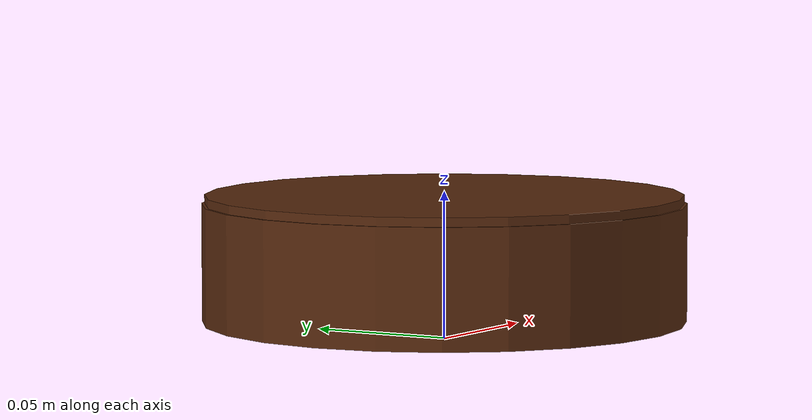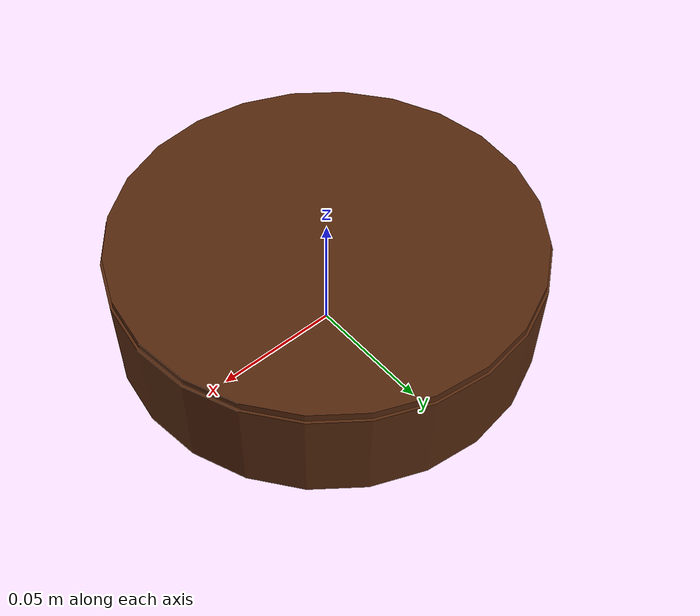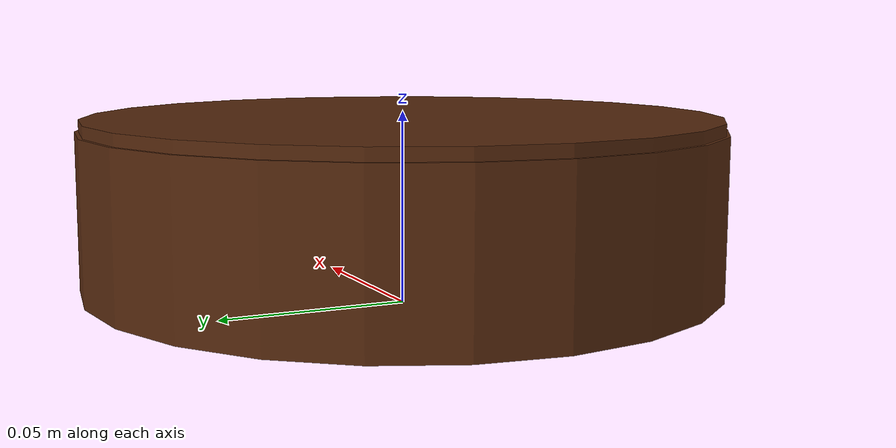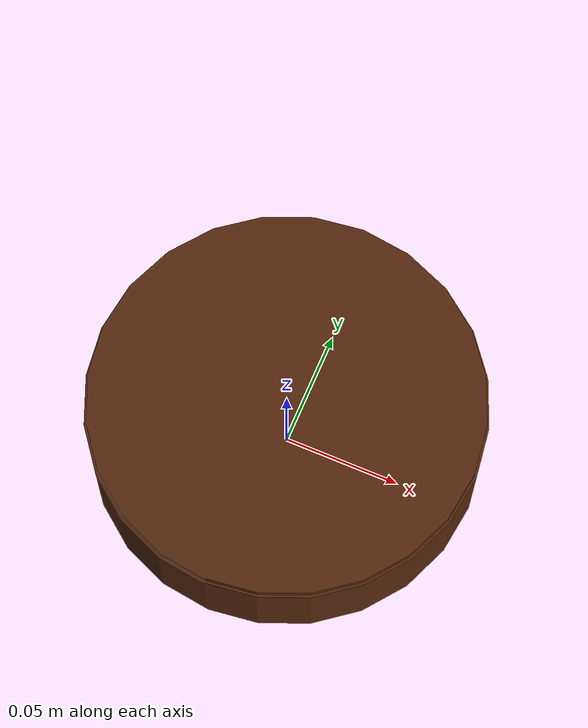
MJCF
<mujoco model="small_wooden_tray">
  <asset>
    <material name="small_wooden_tray" rgba="0.34 0.16 0.055 1" specular="0.18" shininess="0.12" reflectance="0.20" />
  </asset>
  <worldbody>
    <body>
      <body name="object">
        <site type="box" pos="0 0 0.060" quat="1 0 0 0" size="0.072 0.072 0.010" group="0" rgba="0 0 0 0" name="contain_region" />
        <geom name="round_wooden_coaster_collision" type="cylinder" pos="0 0 0.026" size="0.082 0.020" group="0" rgba="0.34 0.16 0.055 1" friction="0.95 0.3 0.1" />
        <geom name="round_wooden_coaster_visual" type="cylinder" pos="0 0 0.029" size="0.081 0.020" group="1" rgba="0.34 0.16 0.055 1" contype="0" conaffinity="0" />
      </body>
      <site rgba="0 0 0 0" size="0.05" pos="0 0 -0.005" name="bottom_site" />
      <site rgba="0 0 0 0" size="0.05" pos="0 0 0.054" name="top_site" />
      <site rgba="0 0 0 0" size="0.082" pos="0.082 0.082 0" name="horizontal_radius_site" />
    </body>
  </worldbody>
</mujoco>
